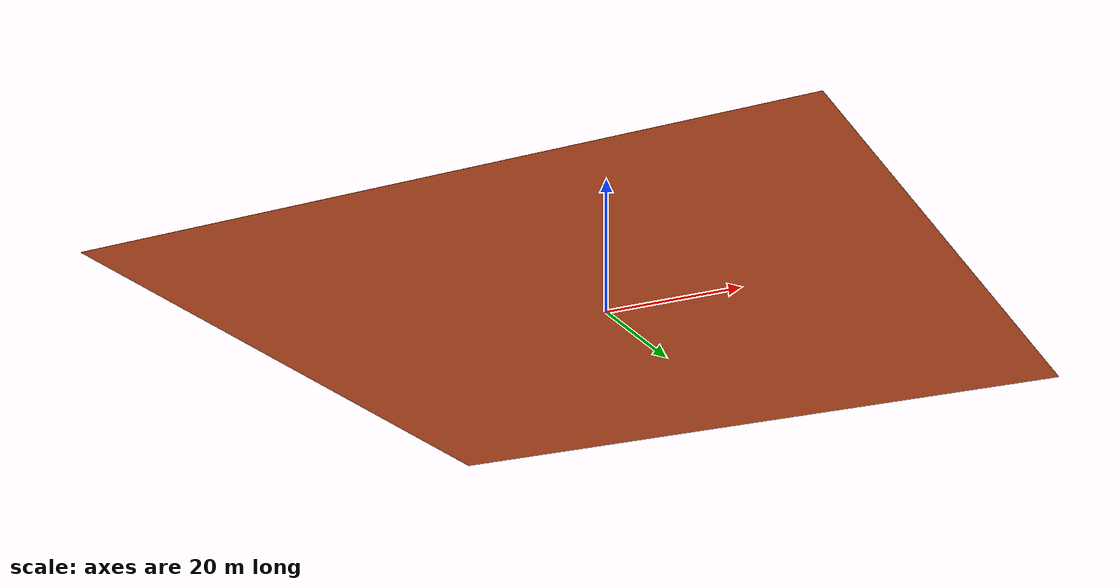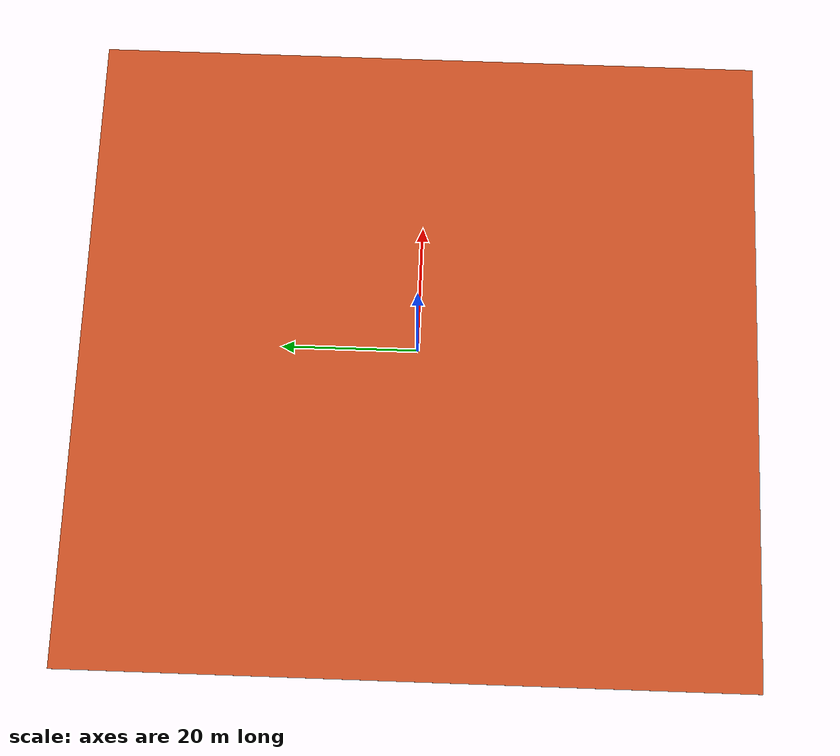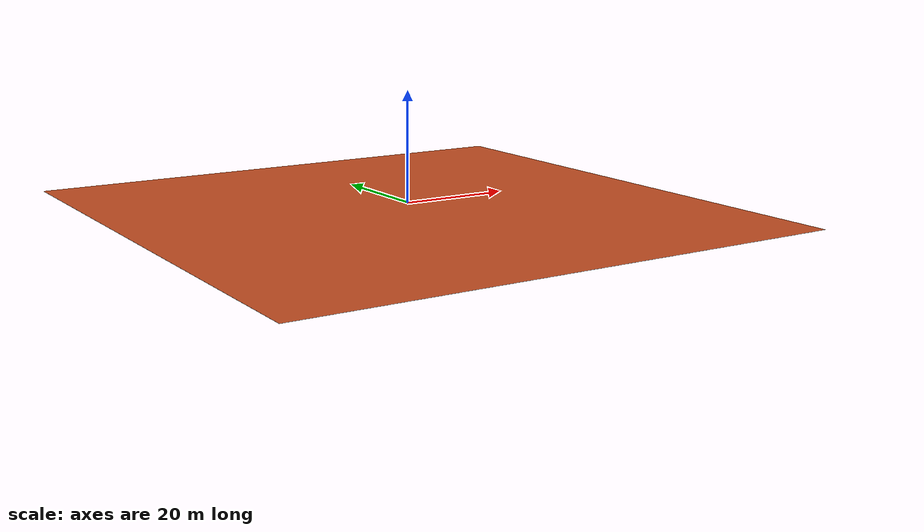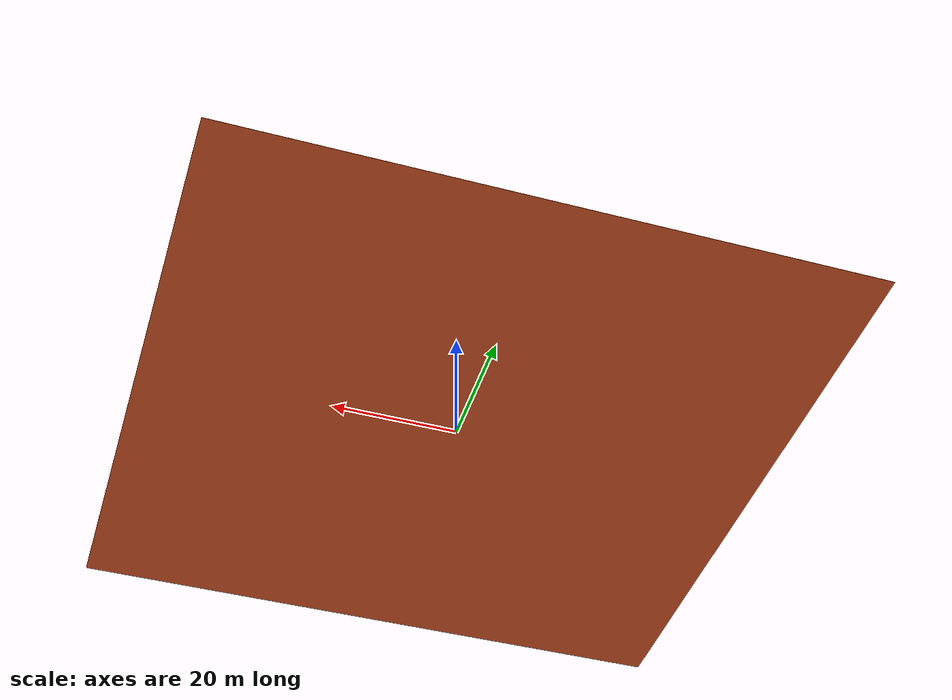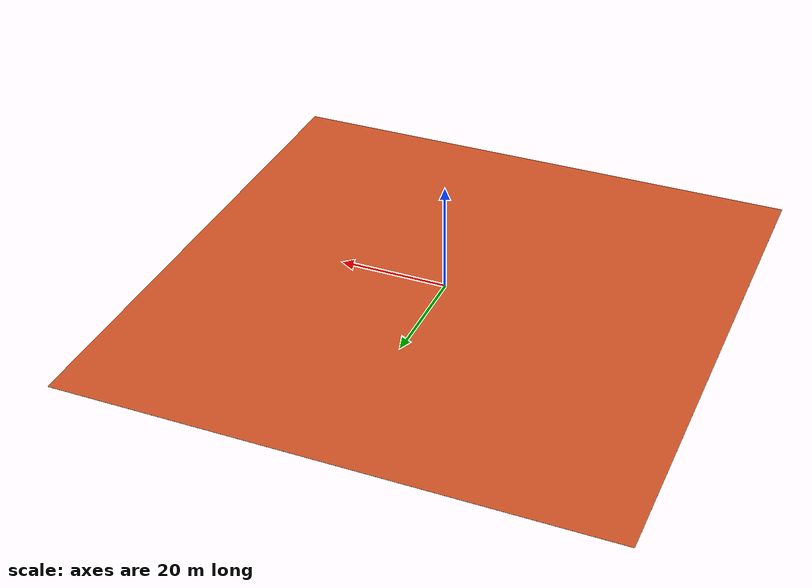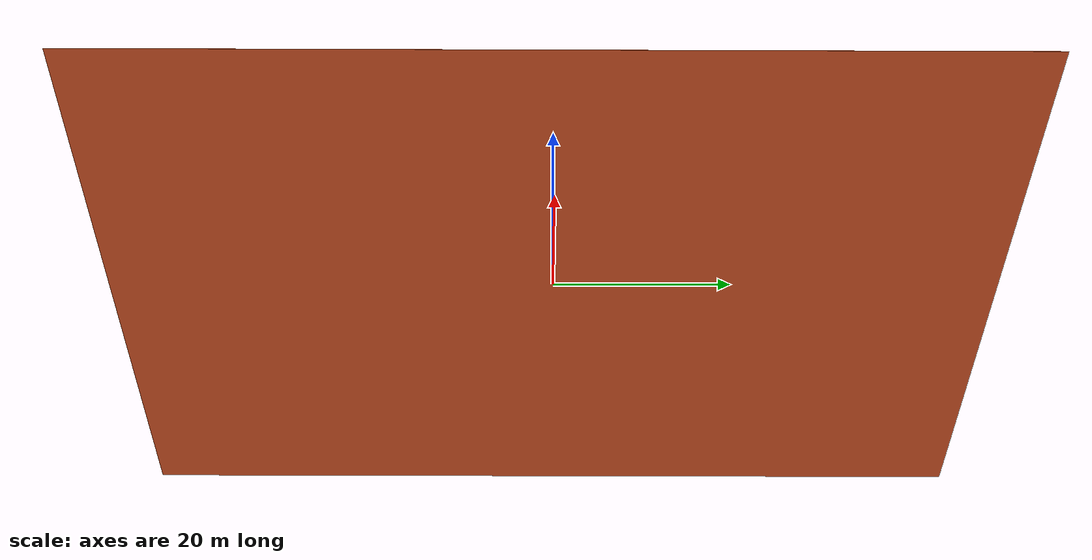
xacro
<?xml version="1.0" ?>
<!-- This file was generated automatically. [2021_08_18_14_10_08] -->
<!-- [Tool url: git@github.jpl.nasa.gov:CR/rst.git, branch: dev/working, commit_hash: 47e8686b, commit_time: 2021-08-16 19:00:50 -0700] -->

<robot name="simple_ground" xmlns:xacro="http://www.ros.org/wiki/xacro">

	<link name="ground">
		<inertial>
			<origin xyz="0 0 0" rpy="0 -0 0"/>
			<mass value="0"/>
			<inertia ixx="0" ixy="0" ixz="0" iyy="0" iyz="0" izz="0"/>
		</inertial>

		<visual name="VisGround">
			<origin xyz="0.09002 0 -1.13338" rpy="0 -0 0"/>
			<geometry>
				<mesh filename="package://m2020_urdf_models/models/simple_ground/simple_ground.dae" scale="1 1 1"/>
			</geometry>
		</visual>
	</link>

</robot>
